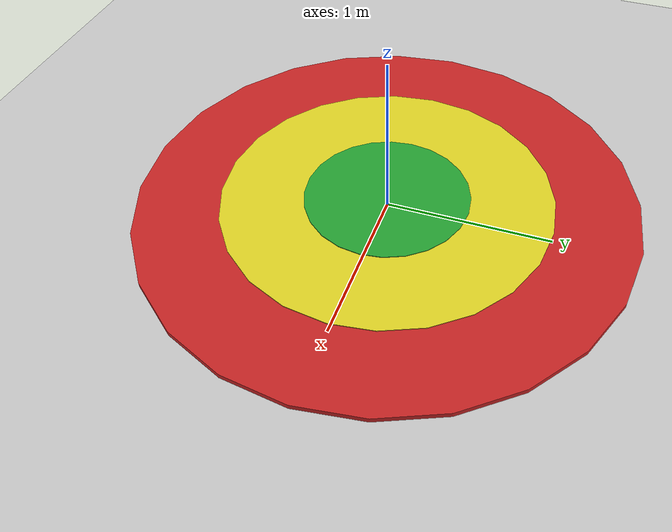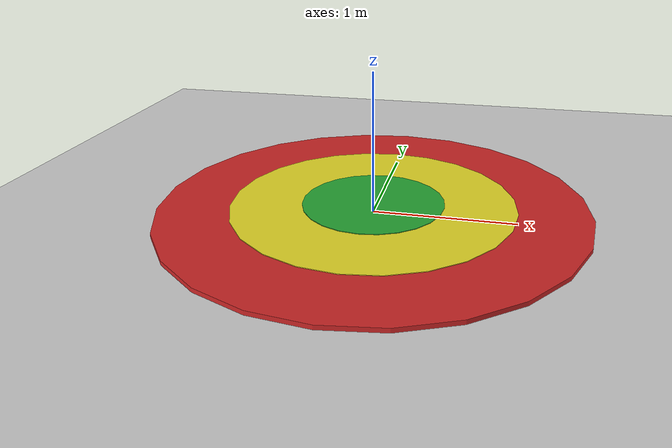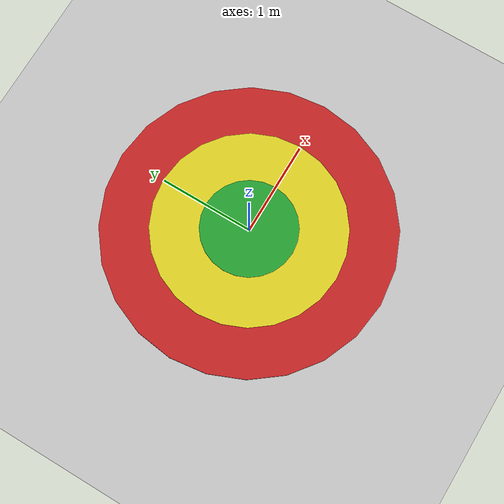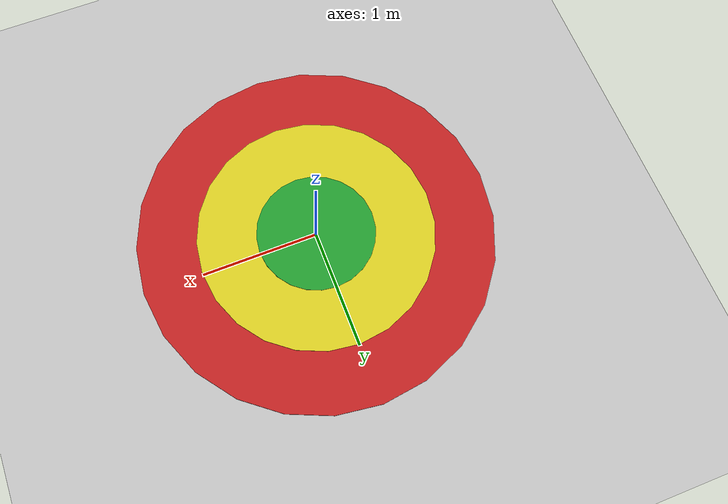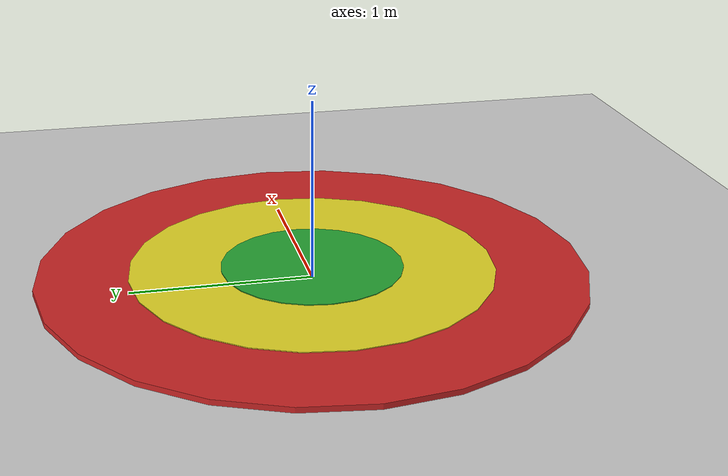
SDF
<?xml version="1.0" ?>
<sdf version='1.5'>
<world name='circle'>

    <light name='sun' type='directional'>
      <cast_shadows>1</cast_shadows>
      <pose>0 0 100 0 -0 0</pose>
      <diffuse>0.8 0.8 0.8 1</diffuse>
      <specular>0.2 0.2 0.2 1</specular>
      <attenuation>
        <range>1000</range>
        <constant>0.9</constant>
        <linear>0.01</linear>
        <quadratic>0.001</quadratic>
      </attenuation>
      <direction>0.5 0.1 -0.9</direction>
    </light>

    <model name='ground'>
      <static>1</static>
      <link name='link'>
        <collision name='collision'>
          <geometry>
            <plane>
              <normal>0 0 1</normal>
              <size>100 100</size>
            </plane>
          </geometry>
          <surface>
            <friction>
              <ode>
                <mu>100</mu>
                <mu2>50</mu2>
              </ode>
            </friction>
            <bounce/>
            <contact>
              <ode/>
            </contact>
          </surface>
          <max_contacts>10</max_contacts>
        </collision>
        <visual name='visual'>
          <cast_shadows>0</cast_shadows>
          <geometry>
            <plane>
              <normal>0 0 1</normal>
              <size>100 100</size>
            </plane>
          </geometry>
          <material>
            <script>
              <uri>file://media/materials/scripts/gazebo.material</uri>
              <name>Gazebo/Grey</name>
            </script>
          </material>
        </visual>
        <velocity_decay>
          <linear>0</linear>
          <angular>0</angular>
        </velocity_decay>
        <self_collide>0</self_collide>
        <kinematic>0</kinematic>
        <gravity>1</gravity>
      </link>
    </model>

    <include>
      <uri>model://Target</uri>
      <pose>0 0 0.05 0 0 0</pose>
    </include>

    <plugin name="ardupilot_sitl_gazebo_plugin" filename="libardupilot_sitl_gazebo_plugin.so">
    <UAV_MODEL>erlecopter</UAV_MODEL>
    </plugin>

  </world>
</sdf>

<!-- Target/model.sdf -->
<sdf version="1.5">
  <model name="Target">
    <static>true</static>
    <link name="green">
      <pose>0 0 0 0 0 0</pose>
      <visual name="visual">
        <geometry>
          <cylinder>
              <radius>0.5</radius>
              <length>.05</length>
          </cylinder>
        </geometry>
        <material>
          <script>
            <uri>file://media/materials/scripts/gazebo.material</uri>
            <name>Gazebo/Green</name>
          </script>
          <ambient>1 1 1 1</ambient>
        </material>
        <cast_shadows>0</cast_shadows>
        <transparency>0</transparency>
      </visual>
    </link>
    <link name="yellow">
      <pose>0 0 0 0 0 0</pose>
      <visual name="visual">
        <geometry>
          <cylinder>
              <radius>1</radius>
              <length>.04</length>
          </cylinder>
        </geometry>
        <material>
          <script>
            <uri>file://media/materials/scripts/gazebo.material</uri>
            <name>Gazebo/Yellow</name>
          </script>
          <ambient>1 1 1 1</ambient>
        </material>
        <cast_shadows>0</cast_shadows>
        <transparency>0</transparency>
      </visual>
    </link>
    <link name="red">
      <pose>0 0 0 0 0 0</pose>
      <visual name="visual">
        <geometry>
          <cylinder>
              <radius>1.5</radius>
              <length>.03</length>
          </cylinder>
        </geometry>
        <material>
          <script>
            <uri>file://media/materials/scripts/gazebo.material</uri>
            <name>Gazebo/Red</name>
          </script>
          <ambient>1 1 1 1</ambient>
        </material>
        <cast_shadows>0</cast_shadows>
        <transparency>0</transparency>
      </visual>
    </link>
  </model>
</sdf>
